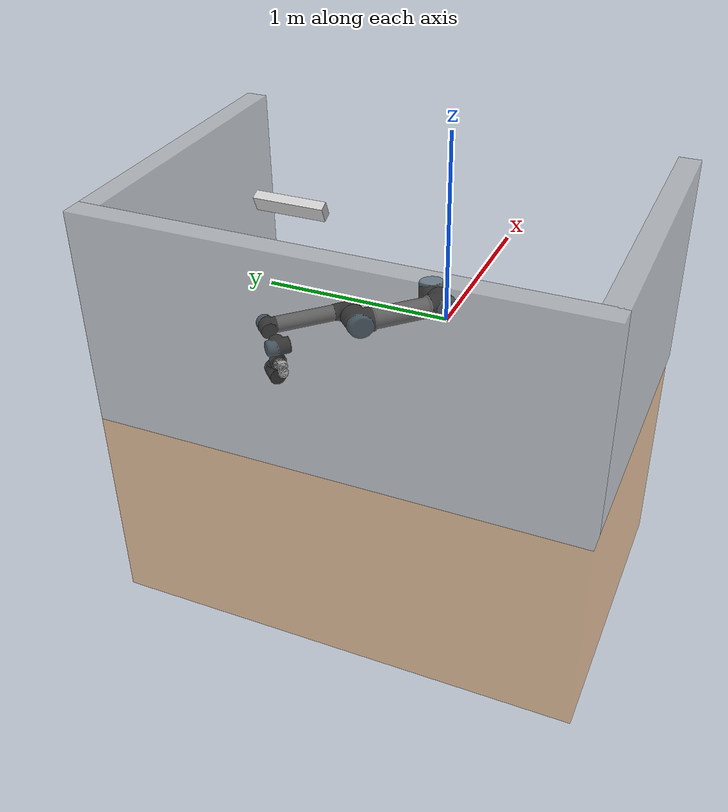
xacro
<?xml version="1.0" ?>
<robot name="ur5_collision_avoidance" xmlns:xacro="http://ros.org/wiki/xacro">
	<xacro:include filename="$(find robot_config)/urdf/vacuum_gripper_macro.xacro"/>
  	<xacro:include filename="$(find robot_config)/urdf/ur5_model.urdf.xacro" />
	<xacro:include filename="$(find robot_config)/urdf/workspace_components.xacro"/>
	<xacro:include filename="$(find robot_config)/urdf/kinect_sensor_macro.xacro"/>

	<!-- property list -->
	<xacro:property name="workcell_height" value="1"/>
	<xacro:property name="robot_stand_height" value="0.20"/>
	<xacro:property name="vacuum_gripper_width" value="0.088"/>
        <xacro:property name="attached_object_length" value="0.17"/>
	<xacro:property name="attached_object_width" value="0.17"/>
	<xacro:property name="attached_object_height" value="0.17"/>
	<xacro:property name="arm_prefix" value=""/>

	<!-- instantiating arm and gripper -->
	<xacro:ur5_robot prefix="${arm_prefix}"/>
	<xacro:vacuum_gripper_definition prefix="${arm_prefix}" gripper_adjustment="0.01"/>

	<!-- instantiating workcell definitions -->
	<xacro:workcell_zone2_components/>
	<!-- end of workcell definitions -->

	<!-- arm-workcell link definitions -->
	<link name="ur5_stand">
		<visual>
			<geometry>
				<cylinder radius="0.0735" length="${robot_stand_height}"/>
			</geometry>
			<material name="orange_transparent"/>
		</visual>
		<collision>
			<geometry>
				<cylinder radius="0.0735" length="${robot_stand_height}"/>
			</geometry>
			<material name="blue_transparent"/>
		</collision>
	</link>

	<link name="base_padding">
		<collision>
			<geometry>
				<cylinder radius="0.14" length="${robot_stand_height * 2}"/>
			</geometry>
			<material name="blue_transparent"/>
		</collision>
	</link>

	<link name="wrist_3_padding">
		<collision>
			<geometry>
				<cylinder radius="0.10" length="0.12"/>
			</geometry>
			<material name="blue_transparent"/>
		</collision>
	</link>

	<link name="attached_object_link">
		<collision>
			<geometry>
				<box size="${attached_object_length} ${attached_object_width} ${attached_object_height}"/>
			</geometry>
			<material name="blue_transparent"/>
		</collision>
	</link>

	<!-- instantiating sensor definitions -->

	<xacro:sensor_definitions prefix="${arm_prefix}" parent_link="ur5_stand"
		x_val="-0.981" y_val="0.190" z_val="1.015" pitch="1.145" yaw="0.035" roll="0.019" />
	<!-- end of sensor definitions -->

	<joint name="world_to_stand" type="fixed">
		<parent link="world_frame"/>
		<child link="ur5_stand"/>
		<origin xyz="-0.238 0 ${robot_stand_height * 0.5}"/>
	</joint>

	<joint name="wrist_3_link_to_wrist_3_padding" type="fixed">
		<parent link="wrist_3_link"/>
		<child link="wrist_3_padding"/>
		<origin xyz="0 0.09 0" rpy="1.57 0 0"/>
	</joint>

	<joint name="world_to_base_padding" type="fixed">
		<parent link="world_frame"/>
		<child link="base_padding"/>
		<origin xyz="-0.238 0 ${robot_stand_height}"/>
	</joint>

	<joint name="tcp_to_attached_object" type="fixed">
		<parent link="tcp_frame"/>
		<child link="attached_object_link"/>
		<origin xyz="0 0 ${0.5 * attached_object_height}"/>
	</joint>

	<!-- end of arm-workcell link definitions -->

	<!-- arm-workcell joint definitions -->
	<joint name="stand_to_base" type="fixed">
		<parent link="ur5_stand"/>
		<child link="${arm_prefix}base_link"/>
		<origin xyz="0 0 ${robot_stand_height * 0.5}" rpy="0 0 2.355"/>
	</joint>

	<!-- end of arm workcell joint definitions-->

	<!-- arm-gripper coupling joint definitions -->
	<joint name="${arm_prefix}to_gripper" type="fixed">
		<parent link="${arm_prefix}ee_link"/>
		<child link="${arm_prefix}gripper_frame"/>
		<origin xyz="0 0 0" rpy="-1.57 0 -1.57"/>
	</joint>
	<!-- end of arm-gripper coupling joint definitions -->
</robot>

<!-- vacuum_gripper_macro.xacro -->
<robot xmlns:xacro="http://ros.org/wiki/xacro">
	<!-- parameter list -->
	<xacro:property name="gripper_length" value="0.044"/>
	<xacro:property name="gripper_width" value="0.088"/>
	<xacro:property name="gripper_height" value="0.0946"/>
	<xacro:property name="gripper_body_height" value="0.16"/>

	<xacro:macro name="vacuum_gripper_definition" params="prefix gripper_adjustment">
		<link name="${prefix}gripper_frame"/>
		<link name="${prefix}gripper_body">
			<visual>
				<!--origin xyz="0 0.036 -0.0473" rpy="0 0 0"/-->
				<origin xyz="0 0 -0.048" rpy="0 0 0"/>
				<geometry>
					<mesh filename="package://robot_config/meshes/vacuum_gripper_single_suction_cup.STL" />
				</geometry>
				<material name="silver">
					<color rgba="0.8 0.8 0.8 1"/>
				</material>
			</visual>
			<collision>
				<geometry>
					<box size="${gripper_length} ${gripper_width} ${gripper_body_height}"/>
				</geometry>
				<material name="another_blue2">
					<color rgba="0.38 0.54 0.83 1"/>
				</material>
			</collision>
		</link>
		<link name="${prefix}tcp_frame"/>
		<joint name="${prefix}gripper_to_palm" type="fixed">
			<parent link="${prefix}gripper_frame"/>
			<child link="${prefix}gripper_body"/>
			<origin xyz="0 0 ${gripper_height * 0.5}" rpy="0 0 0"/>
		</joint>
		<joint name="${prefix}gripper_to_tcp" type="fixed">
			<parent link="${prefix}gripper_frame"/>
			<child link="${prefix}tcp_frame"/>
			<origin xyz=" 0 ${gripper_length * 0.5} ${0.12 + gripper_adjustment}" rpy="0 0 0"/>
		</joint>
	</xacro:macro>
</robot>

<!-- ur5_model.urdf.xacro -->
<robot xmlns:sensor="http://playerstage.sourceforge.net/gazebo/xmlschema/#sensor"
       xmlns:controller="http://playerstage.sourceforge.net/gazebo/xmlschema/#controller"
       xmlns:interface="http://playerstage.sourceforge.net/gazebo/xmlschema/#interface"
       xmlns:xacro="http://ros.org/wiki/xacro">

  <include filename="$(find ur_description)/urdf/ur5.transmission.xacro" />
  <include filename="$(find ur_description)/urdf/ur5.gazebo.xacro" />
  <include filename="$(find ur_description)/urdf/materials.urdf.xacro" />

  <property name="pi" value="3.14159265" />

<!-- Inertia parameters -->
  <property name="base_mass" value="4.0" /> <!-- Invented number, only matters for simulator -->
  <property name="shoulder_mass" value="3.7000" />
  <property name="upper_arm_mass" value="8.3930" />
  <property name="forearm_mass" value="2.2750" />
  <property name="wrist_1_mass" value="1.2190" />
  <property name="wrist_2_mass" value="1.2190" />
  <property name="wrist_3_mass" value="0.1879" />

  <property name="shoulder_cog" value="0.0 0.00193 -0.02561" />
  <property name="upper_arm_cog" value="0.0 -0.024201 0.2125" />
  <property name="forearm_cog" value="0.0 0.0265 0.11993" />       <!-- 0.119 is not half of 0.39225, is this really correct? -->
  <property name="wrist_1_cog" value="0.0 0.110949 0.01634" />
  <property name="wrist_2_cog" value="0.0 0.0018 0.11099" />
  <property name="wrist_3_cog" value="0.0 0.001159 0.0" />

<!-- Kinematic model -->
  <property name="shoulder_height" value="0.089159" />
  <property name="shoulder_offset" value="0.13585" />  <!-- shoulder_offset - elbow_offset + wrist_1_length = 0.10915 -->
  <property name="upper_arm_length" value="0.42500" />
  <property name="elbow_offset" value="0.1197" />       <!-- CAD measured -->
  <property name="forearm_length" value="0.39225" />
  <property name="wrist_1_length" value="0.093" />     <!-- CAD measured -->
  <property name="wrist_2_length" value="0.09465" />   <!-- In CAD this distance is 0.930, but in the spec it is 0.09465 -->
  <property name="wrist_3_length" value="0.0823" />

  <property name="shoulder_radius" value="0.060" />   <!-- manually measured -->
  <property name="upper_arm_radius" value="0.054" />  <!-- manually measured -->
  <property name="elbow_radius" value="0.060" />      <!-- manually measured -->
  <property name="forearm_radius" value="0.040" />    <!-- manually measured -->
  <property name="wrist_radius" value="0.045" />      <!-- manually measured -->

<xacro:macro name="ur5_robot" params="prefix">

  <link name="${prefix}base_link" >
    <visual>
      <geometry>
		    <mesh filename="package://ur_description/meshes/ur5/visual/Base.dae" />
      </geometry>
      <origin xyz="0.0 0.0 0.003" rpy="0.0 0.0 ${3.0 * pi / 4.0}" />
    </visual>
	<collision>
      <geometry>
        <mesh filename="package://ur_description/meshes/ur5/collision/Base.dae" />
      </geometry>
    </collision>
    <inertial>
      <mass value="${base_mass}" />
      <inertia ixx="1.0" ixy="0.0" ixz="0.0" iyy="1.0" iyz="0.0" izz="1.0"/>
    </inertial>
  </link>

  <joint name="${prefix}shoulder_pan_joint" type="revolute">
    <parent link="${prefix}base_link" />
    <child link = "${prefix}shoulder_link" />
    <origin xyz="0.0 0.0 ${shoulder_height}" rpy="0.0 0.0 0.0" />
    <axis xyz="0 0 1" />
    <limit lower="${-0.75 * pi}" upper="${0.75 * pi}" effort="10.0" velocity="${pi}"/>
    <dynamics damping="10" friction="0.1"/>
  </joint>

  <link name="${prefix}shoulder_link">
    <visual>
      <geometry>
        <mesh filename="package://ur_description/meshes/ur5/visual/Shoulder.dae" />
      </geometry>
    </visual>
    <collision>
      <geometry>
        <mesh filename="package://ur_description/meshes/ur5/collision/Shoulder.dae" />
      </geometry>
    </collision>
    <inertial>
      <mass value="${shoulder_mass}" />
      <inertia ixx="1.0" ixy="0.0" ixz="0.0" iyy="1.0" iyz="0.0" izz="1.0"/>
      <origin xyz="${shoulder_cog}" rpy="0.0 0.0 0.0" />
    </inertial>
  </link>

  <joint name="${prefix}shoulder_lift_joint" type="revolute">
    <parent link="${prefix}shoulder_link" />
    <child link = "${prefix}upper_arm_link" />
    <origin xyz="0.0 ${shoulder_offset} 0.0" rpy="0.0 ${pi / 2.0} 0.0" />
    <axis xyz="0 1 0" />
    <limit lower="${-1.0 * pi}" upper="${1.0 * pi}" effort="10.0" velocity="${pi}"/>
    <dynamics damping="10" friction="0.1"/>
  </joint>

  <link name="${prefix}upper_arm_link">
    <visual>
      <geometry>
        <mesh filename="package://ur_description/meshes/ur5/visual/UpperArm.dae" />
      </geometry>
      <origin xyz="0.0 0.0 0.0" rpy="0.0 0.0 0.0" />
    </visual>
    <collision>
      <geometry>
        <mesh filename="package://ur_description/meshes/ur5/collision/UpperArm.dae" />
      </geometry>
    </collision>
    <inertial>
      <mass value="${upper_arm_mass}" />
      <inertia ixx="1.0" ixy="0.0" ixz="0.0" iyy="1.0" iyz="0.0" izz="1.0"/>
      <origin xyz="${upper_arm_cog}" rpy="0.0 0.0 0.0" />
    </inertial>
  </link>

  <joint name="${prefix}elbow_joint" type="revolute">
    <parent link="${prefix}upper_arm_link" />
    <child link = "${prefix}forearm_link" />
    <origin xyz="0.0 ${-elbow_offset} ${upper_arm_length}" rpy="0.0 0.0 0.0" />
    <axis xyz="0 1 0" />
    <limit lower="${-0.2 * pi}" upper="${0.9 * pi}" effort="10.0" velocity="${pi}"/>
    <dynamics damping="10" friction="0.1"/>
  </joint>

  <link name="${prefix}forearm_link">
    <visual>
      <geometry>
        <mesh filename="package://ur_description/meshes/ur5/visual/Forearm.dae" />
      </geometry>
    </visual>
    <collision>
      <geometry>
        <mesh filename="package://ur_description/meshes/ur5/collision/Forearm.dae" />
      </geometry>
    </collision>
    <inertial>
      <mass value="${forearm_mass}" />
      <origin xyz="${forearm_cog}" rpy="0.0 0.0 0.0" />
      <inertia ixx="1.0" ixy="0.0" ixz="0.0" iyy="1.0" iyz="0.0" izz="1.0"/>
    </inertial>
  </link>

  <joint name="${prefix}wrist_1_joint" type="revolute">
    <parent link="${prefix}forearm_link" />
    <child link = "${prefix}wrist_1_link" />
    <origin xyz="0.0 0.0 ${forearm_length}" rpy="0.0 ${pi / 2.0} 0.0" />
    <axis xyz="0 1 0" />
    <limit lower="${-1.0 * pi}" upper="${0.01 * pi}" effort="10.0" velocity="${pi}"/>
    <dynamics damping="10" friction="0.1"/>
  </joint>

  <link name="${prefix}wrist_1_link">
    <visual>
      <geometry>
        <mesh filename="package://ur_description/meshes/ur5/visual/Wrist1.dae" />
      </geometry>
      <origin xyz="0.0 ${wrist_1_length} 0.0" rpy="0.0 ${pi / 2.0} 0.0" />
    </visual>
    <collision>
      <geometry>
        <mesh filename="package://ur_description/meshes/ur5/collision/Wrist1.dae" />
      </geometry>
      <origin rpy="0.0 1.570796325 0.0" xyz="0.0 0.093 0.0"/>
    </collision>
    <inertial>
      <mass value="${wrist_1_mass}" />
      <origin xyz="${wrist_1_cog}" rpy="0.0 0.0 0.0" />
      <inertia ixx="1.0" ixy="0.0" ixz="0.0" iyy="1.0" iyz="0.0" izz="1.0"/>
    </inertial>
  </link>

  <joint name="${prefix}wrist_2_joint" type="revolute">
    <parent link="${prefix}wrist_1_link" />
    <child link = "${prefix}wrist_2_link" />
    <origin xyz="0.0 ${wrist_1_length} 0.0" rpy="0.0 0.0 0.0" />
    <axis xyz="0 0 1" />
    <limit lower="${-1.0 * pi}" upper="${1.0 * pi}" effort="10.0" velocity="${pi}"/>
    <dynamics damping="10" friction="0.1"/>
  </joint>

  <link name="${prefix}wrist_2_link">
    <visual>
      <geometry>
        <mesh filename="package://ur_description/meshes/ur5/visual/Wrist2.dae" />
      </geometry>
      <origin xyz="0.0 0.0 ${wrist_2_length}" rpy="0.0 0.0 0.0" />
    </visual>
    <collision>
      <geometry>
        <mesh filename="package://ur_description/meshes/ur5/collision/Wrist2.dae" />
      </geometry>
       <origin rpy="0.0 0.0 0.0" xyz="0.0 0.0 0.09465"/>
    </collision>
    <inertial>
      <mass value="${wrist_2_mass}" />
      <origin xyz="${wrist_2_cog}" rpy="0.0 0.0 0.0" />
      <inertia ixx="1.0" ixy="0.0" ixz="0.0" iyy="1.0" iyz="0.0" izz="1.0"/>
    </inertial>
  </link>

  <joint name="${prefix}wrist_3_joint" type="revolute">
    <parent link="${prefix}wrist_2_link" />
    <child link = "${prefix}wrist_3_link" />
    <origin xyz="0.0 0.0 ${wrist_2_length}" rpy="0.0 0.0 0.0" />
    <axis xyz="0 1 0" />
    <limit lower="${-1.5 * pi}" upper="${1.5 * pi}" effort="10.0" velocity="${pi}"/>
    <dynamics damping="10" friction="0.1"/>
  </joint>

  <link name="${prefix}wrist_3_link">
    <visual>
      <geometry>
        <mesh filename="package://ur_description/meshes/ur5/visual/Wrist3.dae" />
      </geometry>
    </visual>
    <collision>
      <geometry>
        <mesh filename="package://ur_description/meshes/ur5/collision/Wrist3.dae" />
      </geometry>
    </collision>
    <inertial>
      <mass value="${wrist_3_mass}" />
      <origin xyz="${wrist_3_cog}" rpy="0.0 0.0 0.0" />
      <inertia ixx="1.0" ixy="0.0" ixz="0.0" iyy="1.0" iyz="0.0" izz="1.0"/>
    </inertial>
  </link>

  <joint name="${prefix}ee_fixed_joint" type="fixed">
    <parent link="${prefix}wrist_3_link" />
    <child link = "${prefix}ee_link" />
    <origin xyz="0.0 ${wrist_3_length} 0.0" rpy="0.0 0.0 ${pi/2.0}" />
  </joint>

  <link name="${prefix}ee_link" />

  <xacro:ur_arm_transmission name="${prefix}" />

  <gazebo reference="universal_robot">
    <material>Gazebo/Blue</material>
  </gazebo>

</xacro:macro>
</robot>

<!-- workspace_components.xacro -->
<robot name="mantis_workspace_components" xmlns:xacro="http://ros.org/wiki/xacro">
	<!-- property list -->
	<xacro:property name="workcell_height" value="1"/>
	<xacro:property name="workcell_length" value="2.775"/>
	<xacro:property name="workcell_width" value="2.220"/>
	<xacro:property name="workcell_thickness" value="0.04"/>

	<!-- color macros -->
	<xacro:macro name="material_yellow_transparent">
		<material name="yellow_transparent">
			<color rgba="0 1 1 0.4"/>
		</material>
	</xacro:macro>
	<xacro:macro name="material_orange_transparent">
		<material name="orange_transparent">
			<color rgba="1 0.5 0 0.4"/>
		</material>
	</xacro:macro>
	<xacro:macro name="material_gray_transparent">
		<material name="gray_transparent">
			<color rgba="0.6 0.6 0.6 0.4"/>
		</material>
	</xacro:macro>
	<xacro:macro name="material_blue_transparent">
		<material name="blue_transparent">
			<color rgba="0 0.8 1 0.4"/>
		</material>
	</xacro:macro>
	<xacro:material_yellow_transparent />
	<xacro:material_orange_transparent />
	<xacro:material_gray_transparent />
	<xacro:material_blue_transparent />
	<!-- end of color macros -->

	<!-- geometry macros -->
	<xacro:macro name="workcell_geometry" params="length width height *color_block">
			<geometry>
				<box size="${length} ${width} ${height}"/>
			</geometry>
			<xacro:insert_block name="color_block"/>
	</xacro:macro>
	<xacro:macro name="workcell_element" params="name parent length width height offset_x offset_y">
		<link name="${name}">
			<visual>
				<xacro:workcell_geometry length="${length}" width="${width}" height="${height}">
					<material name="gray_transparent"/>
				</xacro:workcell_geometry>
			</visual>
			<collision>
				<xacro:workcell_geometry length="${length}" width="${width}" height="${height}">
					<material name="blue_transparent"/>
				</xacro:workcell_geometry>
			</collision>
		</link>
		<joint name="${parent}_to_${name}" type="fixed">
			<parent link="${parent}"/>
			<child link="${name}"/>
			<origin xyz="${offset_x} ${offset_y} ${0.5 * height}" rpy="0 0 0"/>
		</joint>
	</xacro:macro>
	<!-- end of geometry macros -->

	<!-- workcell definitions -->
	<link name="world_frame"/>

	<!-- workcell part1 components macro -->
	<xacro:macro name="workcell_zone1_components">
		<link name="table_base1">
			<visual>
				<origin xyz="0 0 ${workcell_height * -0.5}" rpy="0 0 0"/>
				<xacro:workcell_geometry length="${workcell_length * 0.5}"
					width="${workcell_width}" height="${workcell_height}">
					<material name="orange_transparent"/>
				</xacro:workcell_geometry>
			</visual>
			<collision>
				<origin xyz="0 0 ${workcell_height * -0.5}" rpy="0 0 0"/>
				<xacro:workcell_geometry length="${workcell_length * 0.5}"
					 width="${workcell_width}" height="${workcell_height}">
					<material name="blue_transparent"/>
				</xacro:workcell_geometry>
			</collision>
		</link>

		<joint name="workcell_to_table_base1" type="fixed">
			<parent link="world_frame"/>
			<child link="table_base1"/>
			<origin xyz="${workcell_length * 0.25} 0 0" rpy="0 0 0"/>
		</joint>

		<xacro:workcell_element name="front_wall1" parent="world_frame"
			 length="0.1" width="2.220" height="${workcell_height}" offset_x="1.3375" offset_y="0"/>
		<!--xacro:workcell_element name="back_wall1" parent="world_frame"
			 length="0.04" width="2.00" height="${workcell_height}" offset_x="0.02" offset_y="0"/-->
		<xacro:workcell_element name="left_wall1" parent="world_frame"
			 length="1.221" width="0.1" height="${workcell_height}" offset_x="0.687" offset_y="1.060"/>
		<xacro:workcell_element name="right_wall1" parent="world_frame"
			 length="1.221" width="0.1" height="${workcell_height}" offset_x="0.687" offset_y="-1.060"/>
	</xacro:macro>
	<!-- end of workcell part1 components macro -->

	<!-- workcell part2 components macro -->
	<xacro:macro name="workcell_zone2_components">
		<link name="table_base2">
			<visual>
				<origin xyz="0 0 ${workcell_height * -0.5}" rpy="0 0 0"/>
				<xacro:workcell_geometry length="${workcell_length * 0.5}"
					width="${workcell_width}" height="${workcell_height}">
					<material name="orange_transparent"/>
				</xacro:workcell_geometry>
			</visual>
			<collision>
				<origin xyz="0 0 ${workcell_height * -0.5}" rpy="0 0 0"/>
				<xacro:workcell_geometry length="${workcell_length * 0.5}"
					 width="${workcell_width}" height="${workcell_height}">
					<material name="blue_transparent"/>
				</xacro:workcell_geometry>
			</collision>
		</link>

		<link name="roof2">
			<collision>
				<origin xyz="0 0 ${workcell_height }" rpy="0 0 0"/>
				<xacro:workcell_geometry length="${workcell_length * 0.5}"
					 width="${workcell_width}" height="${workcell_thickness}">
					<material name="blue_transparent"/>
				</xacro:workcell_geometry>
			</collision>
		</link>
		<joint name="workcell_to_table_base2" type="fixed">
			<parent link="world_frame"/>
			<child link="table_base2"/>
			<origin xyz="${workcell_length * -0.25} 0 0" rpy="0 0 0"/>
		</joint>
		<joint name="workcell_to_roof2" type="fixed">
			<parent link="world_frame"/>
			<child link="roof2"/>
			<origin xyz="${workcell_length * -0.25} 0 0" rpy="0 0 0"/>
		</joint>
		<xacro:workcell_element name="front_wall2" parent="world_frame"
			 length="0.1" width="2.220" height="${workcell_height}" offset_x="-1.3375" offset_y="0"/>
		<xacro:workcell_element name="left_wall2" parent="world_frame"
			length="1.384" width="0.1" height="${workcell_height}" offset_x="-0.601" offset_y="1.060"/>
		<xacro:workcell_element name="right_wall2" parent="world_frame"
			length="1.384" width="0.1" height="${workcell_height}" offset_x="-0.601" offset_y="-1.060"/>
		<xacro:workcell_element name="cover_part1" parent="world_frame"
			 length="0.229" width="0.508" height="0.14" offset_x="-0.042" offset_y="-0.081"/>
		<xacro:workcell_element name="cover_part2" parent="world_frame"
			 length="0.121" width="0.260" height="0.14" offset_x="-0.012" offset_y="-0.465"/>
	</xacro:macro>
	<!-- end of workcell part2 components macro -->
</robot>

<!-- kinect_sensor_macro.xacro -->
<robot name="mantis_sensor" xmlns:xacro="http://ros.org/wiki/xacro">

	<xacro:macro name="sensor_definitions" params="prefix parent_link x_val y_val z_val roll pitch yaw" >
		<material name="${prefix}color_b">
			<color rgba="0 0.8 1 0.4"/>
		</material>
		<material name="${prefix}color_a">
			<color rgba="0.8 0.2 1 0.2"/>
		</material>
		<material name="${prefix}silver">
			<color rgba="0.6 0.6 0.6 1"/>
		</material>
		<!-- sensor main components -->
		<link name="${prefix}kinect_link">
			<collision>
				<material name="${prefix}color_a"/>
				<geometry>
					<box size="0.36 0.28 0.22"/>
				</geometry>
			</collision>
		</link>
		<link name="${prefix}kinect_keepout">
		</link>
		<!-- end of sensor main components -->

	  	<!-- sensor links -->
		<link name="${prefix}kinect_frame">
			<visual>
				<origin rpy="0 0 0" xyz="0 0 0"/>
				<geometry>
					<box size="0.064 0.28 0.04"/>
				</geometry>
				<material name="${prefix}silver"/>
			</visual>
			<collision>
				<origin rpy="0 0 0" xyz="0 0 0"/>
				<geometry>
					<box size="0.064 0.28 0.04"/>
				</geometry>
			</collision>
		</link>
		<link name="${prefix}kinect_ir_link">
			<visual>
				<origin rpy="0 0 0" xyz="0 0 0"/>
				<geometry>
					<sphere radius="0.0005"/>
				</geometry>
			</visual>
		</link>
		<link name="${prefix}kinect_rgb_link">
			<visual>
				<origin rpy="0 0 0" xyz="0 0 0"/>
				<geometry>
					<sphere radius="0.0005"/>
				</geometry>
			</visual>
		</link>
		<link name="${prefix}kinect_ir_optical_frame"/>
		<link name="${prefix}kinect_rgb_optical_frame"/>
		<!-- end of sensor links -->

		<!-- sensor joints -->
		<joint name="${prefix}kinect_frame_joint" type="fixed">
			<parent link="${prefix}kinect_link"/>
			<child link="${prefix}kinect_frame"/>
			<origin rpy="0 0 0" xyz="0 0 0"/>
		</joint>
		<joint name="${prefix}kinect_ir_joint" type="fixed">
			<parent link="${prefix}kinect_frame"/>
			<child link="${prefix}kinect_ir_link"/>
			<origin rpy="0 0 0" xyz="0 0 0"/>
		</joint>
		<joint name="${prefix}kinect_ir_optical_frame_joint" type="fixed">
			<parent link="${prefix}kinect_ir_link"/>
			<child link="${prefix}kinect_ir_optical_frame"/>
			<origin rpy="-1.57 0 -1.57" xyz="0 0 0"/>
		</joint>
		<joint name="${prefix}kinect_rgb_joint" type="fixed">
			<parent link="${prefix}kinect_ir_link"/>
			<child link="${prefix}kinect_rgb_link"/>
			<origin rpy="0 0 0" xyz="0 -0.03 0"/>
		</joint>
		<joint name="${prefix}kinect_rgb_optical_frame_joint" type="fixed">
			<parent link="${prefix}kinect_rgb_link"/>
			<child link="${prefix}kinect_rgb_optical_frame"/>
			<origin rpy="-1.57 0 -1.57" xyz="0 0 0"/>
		</joint>
	  	<!-- end of sensor joints -->

		<!-- world joints -->
		<joint name="${prefix}${parent_link}_to_kinect_link" type="fixed">
			<parent link="${parent_link}"/>
			<child link="${prefix}kinect_link"/>
			<origin xyz="${x_val} ${y_val} ${z_val}" rpy="${roll} ${pitch} ${yaw}"/>
		</joint>
		<joint name="${prefix}${parent_link}_to_kinect_keepout" type="fixed">
			<parent link="${parent_link}"/>
			<child link="${prefix}kinect_keepout"/>
			<origin xyz="${x_val} ${y_val} ${(z_val * 0.5) + 0.04}" rpy="0 0 ${yaw}"/>
		</joint>
		<!-- end of world joints -->

	</xacro:macro>
</robot>
